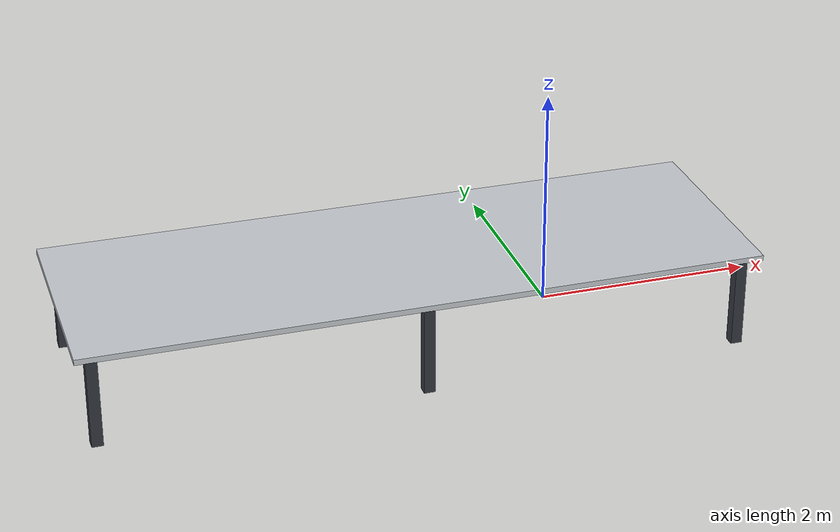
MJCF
<?xml version="1.0" encoding="utf-8"?>
<!-- Generated by scripts/generate_minihannover_open.py; do not edit by hand. -->
<mujoco model="minihannover_open">
  <compiler angle="radian" autolimits="true" />
  <worldbody>
    <body name="minihannover" pos="-1.5 -0.4 0">
      <geom name="minihannover_worktop" type="box" pos="0 0 0.875" size="3 1 0.025" density="700" rgba="0.78 0.8 0.82 1" />
      <geom name="minihannover_leg_x0_y0" type="box" pos="-2.85 -0.85 0.425" size="0.05 0.05 0.425" density="800" rgba="0.2 0.22 0.25 1" />
      <geom name="minihannover_leg_x0_y1" type="box" pos="-2.85 0.85 0.425" size="0.05 0.05 0.425" density="800" rgba="0.2 0.22 0.25 1" />
      <geom name="minihannover_leg_x1_y0" type="box" pos="0 -0.85 0.425" size="0.05 0.05 0.425" density="800" rgba="0.2 0.22 0.25 1" />
      <geom name="minihannover_leg_x1_y1" type="box" pos="0 0.85 0.425" size="0.05 0.05 0.425" density="800" rgba="0.2 0.22 0.25 1" />
      <geom name="minihannover_leg_x2_y0" type="box" pos="2.85 -0.85 0.425" size="0.05 0.05 0.425" density="800" rgba="0.2 0.22 0.25 1" />
      <geom name="minihannover_leg_x2_y1" type="box" pos="2.85 0.85 0.425" size="0.05 0.05 0.425" density="800" rgba="0.2 0.22 0.25 1" />
    </body>
  </worldbody>
</mujoco>
